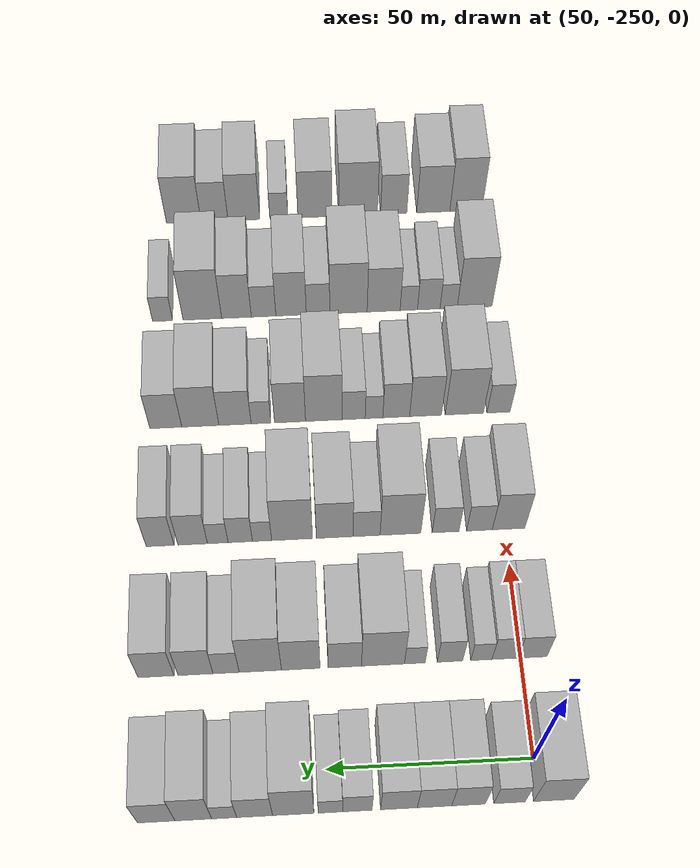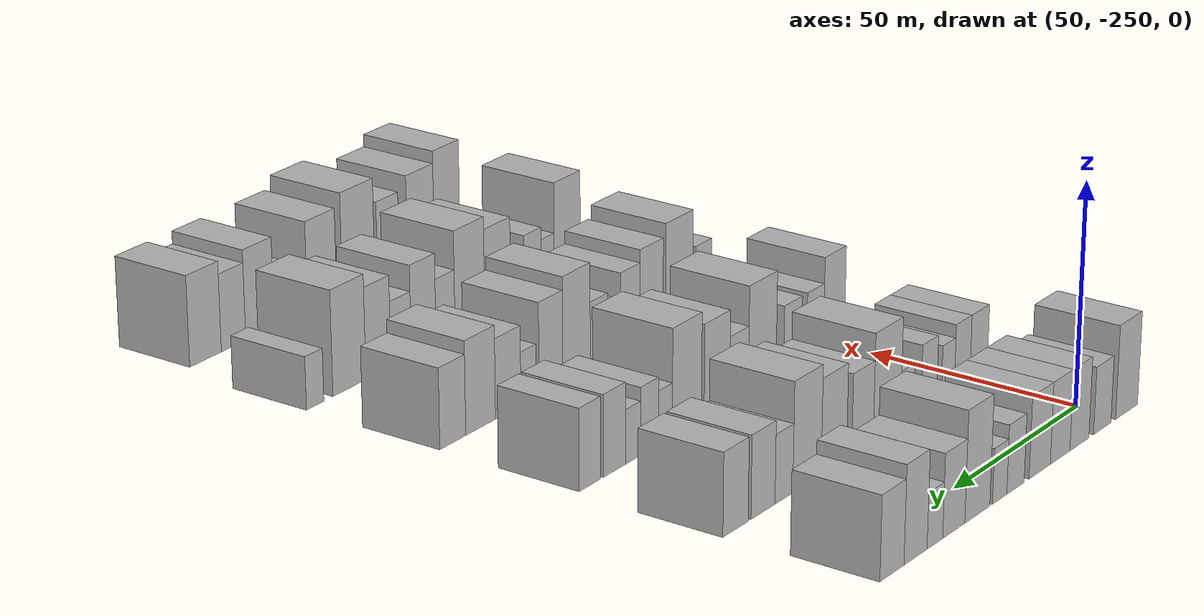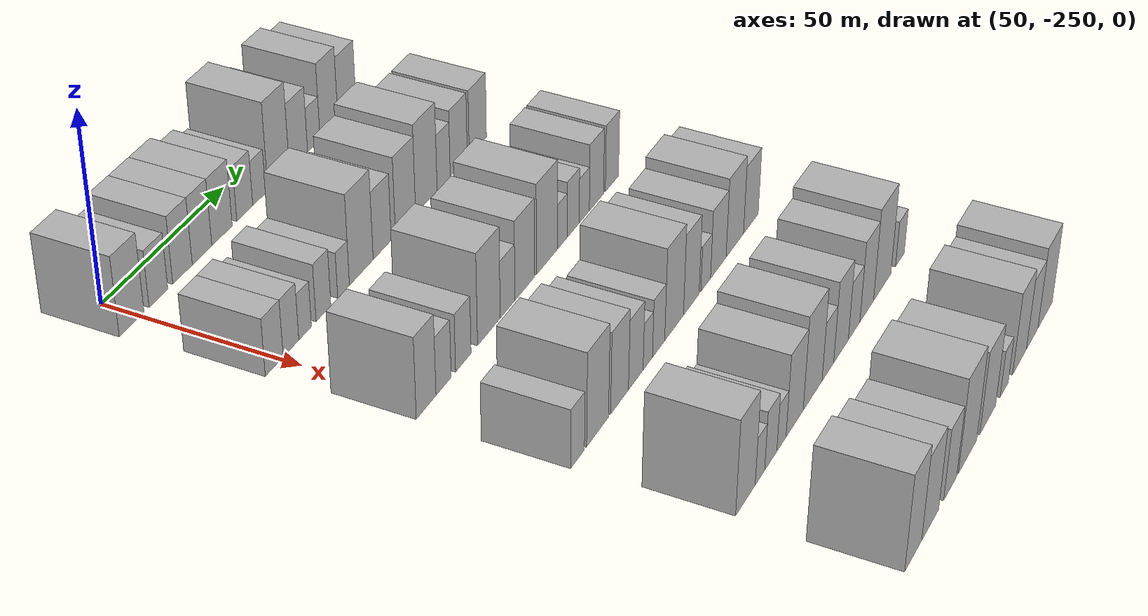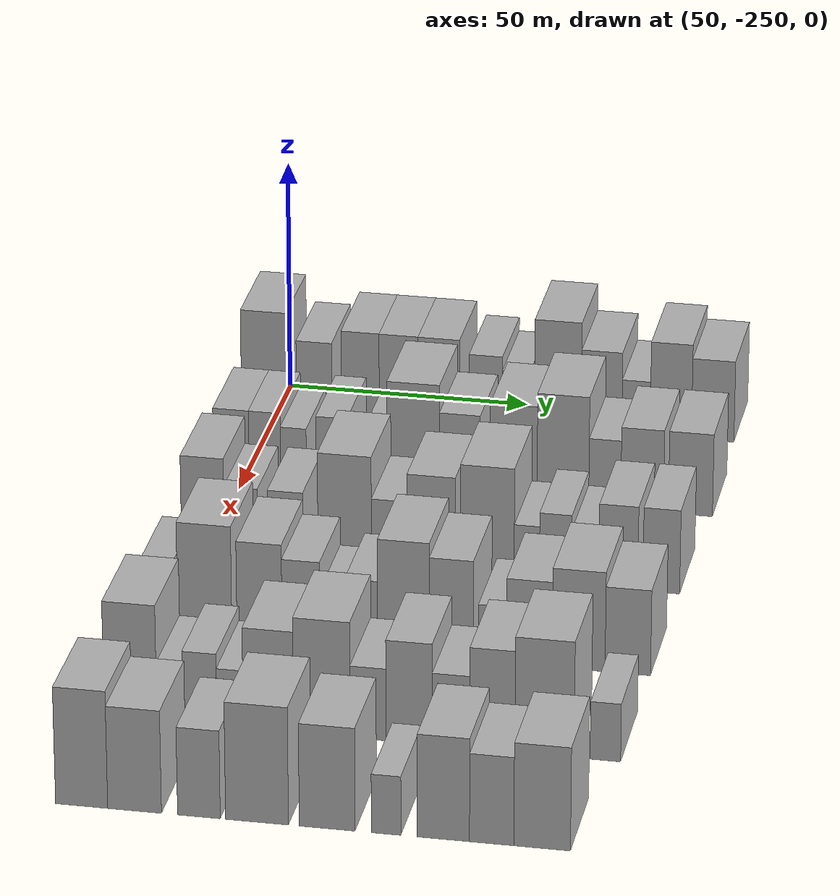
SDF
<sdf version="1.6">
 <world name="default">
  <model name="building_35">
   <static>1</static>
   <pose>50.0000 -253.4609 0 0.000000 0.000000 0.000000</pose>
   <link name="link">
    <pose>0 0 10.50 0 0 0</pose>
    <collision name="collision"><geometry><box><size>20.0000 9.6038 21.0000</size></box></geometry></collision>
    <visual name="visual">
     <cast_shadows>0</cast_shadows>
     <geometry><box><size>20.0000 9.6038 21.0000</size></box></geometry>
     <material>
      <script>
       <uri>model://HANNAS_wall/materials/scripts</uri>
       <uri>model://HANNAS_wall/materials/textures</uri>
       <name>vrc/HANNAS_wall</name>
      </script>
     </material>
    </visual>
   </link>
  </model>
  <model name="building_36">
   <static>1</static>
   <pose>50.0000 -242.9369 0 0.000000 0.000000 0.000000</pose>
   <link name="link">
    <pose>0 0 7.50 0 0 0</pose>
    <collision name="collision"><geometry><box><size>20.0000 7.4442 15.0000</size></box></geometry></collision>
    <visual name="visual">
     <cast_shadows>0</cast_shadows>
     <geometry><box><size>20.0000 7.4442 15.0000</size></box></geometry>
     <material>
      <script>
       <uri>model://HANNAS_wall/materials/scripts</uri>
       <uri>model://HANNAS_wall/materials/textures</uri>
       <name>vrc/HANNAS_wall</name>
      </script>
     </material>
    </visual>
   </link>
  </model>
  <model name="building_37">
   <static>1</static>
   <pose>50.0000 -233.2321 0 0.000000 0.000000 0.000000</pose>
   <link name="link">
    <pose>0 0 9.00 0 0 0</pose>
    <collision name="collision"><geometry><box><size>20.0000 7.9655 18.0000</size></box></geometry></collision>
    <visual name="visual">
     <cast_shadows>0</cast_shadows>
     <geometry><box><size>20.0000 7.9655 18.0000</size></box></geometry>
     <material>
      <script>
       <uri>model://HANNAS_wall/materials/scripts</uri>
       <uri>model://HANNAS_wall/materials/textures</uri>
       <name>vrc/HANNAS_wall</name>
      </script>
     </material>
    </visual>
   </link>
  </model>
  <model name="building_38">
   <static>1</static>
   <pose>50.0000 -225.1872 0 0.000000 0.000000 0.000000</pose>
   <link name="link">
    <pose>0 0 9.00 0 0 0</pose>
    <collision name="collision"><geometry><box><size>20.0000 8.1243 18.0000</size></box></geometry></collision>
    <visual name="visual">
     <cast_shadows>0</cast_shadows>
     <geometry><box><size>20.0000 8.1243 18.0000</size></box></geometry>
     <material>
      <script>
       <uri>model://HANNAS_wall/materials/scripts</uri>
       <uri>model://HANNAS_wall/materials/textures</uri>
       <name>vrc/HANNAS_wall</name>
      </script>
     </material>
    </visual>
   </link>
  </model>
  <model name="building_39">
   <static>1</static>
   <pose>50.0000 -216.7976 0 0.000000 0.000000 0.000000</pose>
   <link name="link">
    <pose>0 0 9.00 0 0 0</pose>
    <collision name="collision"><geometry><box><size>20.0000 8.6549 18.0000</size></box></geometry></collision>
    <visual name="visual">
     <cast_shadows>0</cast_shadows>
     <geometry><box><size>20.0000 8.6549 18.0000</size></box></geometry>
     <material>
      <script>
       <uri>model://HANNAS_wall/materials/scripts</uri>
       <uri>model://HANNAS_wall/materials/textures</uri>
       <name>vrc/HANNAS_wall</name>
      </script>
     </material>
    </visual>
   </link>
  </model>
  <model name="building_40">
   <static>1</static>
   <pose>50.0000 -206.9964 0 0.000000 0.000000 0.000000</pose>
   <link name="link">
    <pose>0 0 7.50 0 0 0</pose>
    <collision name="collision"><geometry><box><size>20.0000 6.9475 15.0000</size></box></geometry></collision>
    <visual name="visual">
     <cast_shadows>0</cast_shadows>
     <geometry><box><size>20.0000 6.9475 15.0000</size></box></geometry>
     <material>
      <script>
       <uri>model://HANNAS_wall/materials/scripts</uri>
       <uri>model://HANNAS_wall/materials/textures</uri>
       <name>vrc/HANNAS_wall</name>
      </script>
     </material>
    </visual>
   </link>
  </model>
  <model name="building_41">
   <static>1</static>
   <pose>50.0000 -200.6761 0 0.000000 0.000000 0.000000</pose>
   <link name="link">
    <pose>0 0 6.00 0 0 0</pose>
    <collision name="collision"><geometry><box><size>20.0000 5.6931 12.0000</size></box></geometry></collision>
    <visual name="visual">
     <cast_shadows>0</cast_shadows>
     <geometry><box><size>20.0000 5.6931 12.0000</size></box></geometry>
     <material>
      <script>
       <uri>model://HANNAS_wall/materials/scripts</uri>
       <uri>model://HANNAS_wall/materials/textures</uri>
       <name>vrc/HANNAS_wall</name>
      </script>
     </material>
    </visual>
   </link>
  </model>
  <model name="building_42">
   <static>1</static>
   <pose>50.0000 -191.9709 0 0.000000 0.000000 0.000000</pose>
   <link name="link">
    <pose>0 0 12.00 0 0 0</pose>
    <collision name="collision"><geometry><box><size>20.0000 9.7174 24.0000</size></box></geometry></collision>
    <visual name="visual">
     <cast_shadows>0</cast_shadows>
     <geometry><box><size>20.0000 9.7174 24.0000</size></box></geometry>
     <material>
      <script>
       <uri>model://HANNAS_wall/materials/scripts</uri>
       <uri>model://HANNAS_wall/materials/textures</uri>
       <name>vrc/HANNAS_wall</name>
      </script>
     </material>
    </visual>
   </link>
  </model>
  <model name="building_43">
   <static>1</static>
   <pose>50.0000 -182.9025 0 0.000000 0.000000 0.000000</pose>
   <link name="link">
    <pose>0 0 9.00 0 0 0</pose>
    <collision name="collision"><geometry><box><size>20.0000 8.4193 18.0000</size></box></geometry></collision>
    <visual name="visual">
     <cast_shadows>0</cast_shadows>
     <geometry><box><size>20.0000 8.4193 18.0000</size></box></geometry>
     <material>
      <script>
       <uri>model://HANNAS_wall/materials/scripts</uri>
       <uri>model://HANNAS_wall/materials/textures</uri>
       <name>vrc/HANNAS_wall</name>
      </script>
     </material>
    </visual>
   </link>
  </model>
  <model name="building_44">
   <static>1</static>
   <pose>50.0000 -175.7633 0 0.000000 0.000000 0.000000</pose>
   <link name="link">
    <pose>0 0 6.00 0 0 0</pose>
    <collision name="collision"><geometry><box><size>20.0000 5.8592 12.0000</size></box></geometry></collision>
    <visual name="visual">
     <cast_shadows>0</cast_shadows>
     <geometry><box><size>20.0000 5.8592 12.0000</size></box></geometry>
     <material>
      <script>
       <uri>model://HANNAS_wall/materials/scripts</uri>
       <uri>model://HANNAS_wall/materials/textures</uri>
       <name>vrc/HANNAS_wall</name>
      </script>
     </material>
    </visual>
   </link>
  </model>
  <model name="building_45">
   <static>1</static>
   <pose>50.0000 -168.5602 0 0.000000 0.000000 0.000000</pose>
   <link name="link">
    <pose>0 0 10.50 0 0 0</pose>
    <collision name="collision"><geometry><box><size>20.0000 8.5470 21.0000</size></box></geometry></collision>
    <visual name="visual">
     <cast_shadows>0</cast_shadows>
     <geometry><box><size>20.0000 8.5470 21.0000</size></box></geometry>
     <material>
      <script>
       <uri>model://HANNAS_wall/materials/scripts</uri>
       <uri>model://HANNAS_wall/materials/textures</uri>
       <name>vrc/HANNAS_wall</name>
      </script>
     </material>
    </visual>
   </link>
  </model>
  <model name="building_46">
   <static>1</static>
   <pose>50.0000 -159.9026 0 0.000000 0.000000 0.000000</pose>
   <link name="link">
    <pose>0 0 9.00 0 0 0</pose>
    <collision name="collision"><geometry><box><size>20.0000 8.7682 18.0000</size></box></geometry></collision>
    <visual name="visual">
     <cast_shadows>0</cast_shadows>
     <geometry><box><size>20.0000 8.7682 18.0000</size></box></geometry>
     <material>
      <script>
       <uri>model://HANNAS_wall/materials/scripts</uri>
       <uri>model://HANNAS_wall/materials/textures</uri>
       <name>vrc/HANNAS_wall</name>
      </script>
     </material>
    </visual>
   </link>
  </model>
  <model name="building_168">
   <static>1</static>
   <pose>85.0000 -252.7920 0 0.000000 0.000000 0.000000</pose>
   <link name="link">
    <pose>0 0 7.50 0 0 0</pose>
    <collision name="collision"><geometry><box><size>20.0000 7.3080 15.0000</size></box></geometry></collision>
    <visual name="visual">
     <cast_shadows>0</cast_shadows>
     <geometry><box><size>20.0000 7.3080 15.0000</size></box></geometry>
     <material>
      <script>
       <uri>model://HANNAS_wall/materials/scripts</uri>
       <uri>model://HANNAS_wall/materials/textures</uri>
       <name>vrc/HANNAS_wall</name>
      </script>
     </material>
    </visual>
   </link>
  </model>
  <model name="building_169">
   <static>1</static>
   <pose>85.0000 -245.8856 0 0.000000 0.000000 0.000000</pose>
   <link name="link">
    <pose>0 0 7.50 0 0 0</pose>
    <collision name="collision"><geometry><box><size>20.0000 6.5049 15.0000</size></box></geometry></collision>
    <visual name="visual">
     <cast_shadows>0</cast_shadows>
     <geometry><box><size>20.0000 6.5049 15.0000</size></box></geometry>
     <material>
      <script>
       <uri>model://HANNAS_wall/materials/scripts</uri>
       <uri>model://HANNAS_wall/materials/textures</uri>
       <name>vrc/HANNAS_wall</name>
      </script>
     </material>
    </visual>
   </link>
  </model>
  <model name="building_170">
   <static>1</static>
   <pose>85.0000 -239.9825 0 0.000000 0.000000 0.000000</pose>
   <link name="link">
    <pose>0 0 6.00 0 0 0</pose>
    <collision name="collision"><geometry><box><size>20.0000 5.3013 12.0000</size></box></geometry></collision>
    <visual name="visual">
     <cast_shadows>0</cast_shadows>
     <geometry><box><size>20.0000 5.3013 12.0000</size></box></geometry>
     <material>
      <script>
       <uri>model://HANNAS_wall/materials/scripts</uri>
       <uri>model://HANNAS_wall/materials/textures</uri>
       <name>vrc/HANNAS_wall</name>
      </script>
     </material>
    </visual>
   </link>
  </model>
  <model name="building_171">
   <static>1</static>
   <pose>85.0000 -232.1460 0 0.000000 0.000000 0.000000</pose>
   <link name="link">
    <pose>0 0 7.50 0 0 0</pose>
    <collision name="collision"><geometry><box><size>20.0000 6.3717 15.0000</size></box></geometry></collision>
    <visual name="visual">
     <cast_shadows>0</cast_shadows>
     <geometry><box><size>20.0000 6.3717 15.0000</size></box></geometry>
     <material>
      <script>
       <uri>model://HANNAS_wall/materials/scripts</uri>
       <uri>model://HANNAS_wall/materials/textures</uri>
       <name>vrc/HANNAS_wall</name>
      </script>
     </material>
    </visual>
   </link>
  </model>
  <model name="building_172">
   <static>1</static>
   <pose>85.0000 -223.3813 0 0.000000 0.000000 0.000000</pose>
   <link name="link">
    <pose>0 0 6.00 0 0 0</pose>
    <collision name="collision"><geometry><box><size>20.0000 5.1577 12.0000</size></box></geometry></collision>
    <visual name="visual">
     <cast_shadows>0</cast_shadows>
     <geometry><box><size>20.0000 5.1577 12.0000</size></box></geometry>
     <material>
      <script>
       <uri>model://HANNAS_wall/materials/scripts</uri>
       <uri>model://HANNAS_wall/materials/textures</uri>
       <name>vrc/HANNAS_wall</name>
      </script>
     </material>
    </visual>
   </link>
  </model>
  <model name="building_173">
   <static>1</static>
   <pose>85.0000 -215.4524 0 0.000000 0.000000 0.000000</pose>
   <link name="link">
    <pose>0 0 12.00 0 0 0</pose>
    <collision name="collision"><geometry><box><size>20.0000 10.7002 24.0000</size></box></geometry></collision>
    <visual name="visual">
     <cast_shadows>0</cast_shadows>
     <geometry><box><size>20.0000 10.7002 24.0000</size></box></geometry>
     <material>
      <script>
       <uri>model://HANNAS_wall/materials/scripts</uri>
       <uri>model://HANNAS_wall/materials/textures</uri>
       <name>vrc/HANNAS_wall</name>
      </script>
     </material>
    </visual>
   </link>
  </model>
  <model name="building_174">
   <static>1</static>
   <pose>85.0000 -205.9591 0 0.000000 0.000000 0.000000</pose>
   <link name="link">
    <pose>0 0 9.00 0 0 0</pose>
    <collision name="collision"><geometry><box><size>20.0000 8.2865 18.0000</size></box></geometry></collision>
    <visual name="visual">
     <cast_shadows>0</cast_shadows>
     <geometry><box><size>20.0000 8.2865 18.0000</size></box></geometry>
     <material>
      <script>
       <uri>model://HANNAS_wall/materials/scripts</uri>
       <uri>model://HANNAS_wall/materials/textures</uri>
       <name>vrc/HANNAS_wall</name>
      </script>
     </material>
    </visual>
   </link>
  </model>
  <model name="building_175">
   <static>1</static>
   <pose>85.0000 -195.0349 0 0.000000 0.000000 0.000000</pose>
   <link name="link">
    <pose>0 0 10.50 0 0 0</pose>
    <collision name="collision"><geometry><box><size>20.0000 9.5619 21.0000</size></box></geometry></collision>
    <visual name="visual">
     <cast_shadows>0</cast_shadows>
     <geometry><box><size>20.0000 9.5619 21.0000</size></box></geometry>
     <material>
      <script>
       <uri>model://HANNAS_wall/materials/scripts</uri>
       <uri>model://HANNAS_wall/materials/textures</uri>
       <name>vrc/HANNAS_wall</name>
      </script>
     </material>
    </visual>
   </link>
  </model>
  <model name="building_176">
   <static>1</static>
   <pose>85.0000 -185.0177 0 0.000000 0.000000 0.000000</pose>
   <link name="link">
    <pose>0 0 12.00 0 0 0</pose>
    <collision name="collision"><geometry><box><size>20.0000 10.4725 24.0000</size></box></geometry></collision>
    <visual name="visual">
     <cast_shadows>0</cast_shadows>
     <geometry><box><size>20.0000 10.4725 24.0000</size></box></geometry>
     <material>
      <script>
       <uri>model://HANNAS_wall/materials/scripts</uri>
       <uri>model://HANNAS_wall/materials/textures</uri>
       <name>vrc/HANNAS_wall</name>
      </script>
     </material>
    </visual>
   </link>
  </model>
  <model name="building_177">
   <static>1</static>
   <pose>85.0000 -176.5375 0 0.000000 0.000000 0.000000</pose>
   <link name="link">
    <pose>0 0 7.50 0 0 0</pose>
    <collision name="collision"><geometry><box><size>20.0000 6.4879 15.0000</size></box></geometry></collision>
    <visual name="visual">
     <cast_shadows>0</cast_shadows>
     <geometry><box><size>20.0000 6.4879 15.0000</size></box></geometry>
     <material>
      <script>
       <uri>model://HANNAS_wall/materials/scripts</uri>
       <uri>model://HANNAS_wall/materials/textures</uri>
       <name>vrc/HANNAS_wall</name>
      </script>
     </material>
    </visual>
   </link>
  </model>
  <model name="building_178">
   <static>1</static>
   <pose>85.0000 -168.9844 0 0.000000 0.000000 0.000000</pose>
   <link name="link">
    <pose>0 0 9.00 0 0 0</pose>
    <collision name="collision"><geometry><box><size>20.0000 8.6184 18.0000</size></box></geometry></collision>
    <visual name="visual">
     <cast_shadows>0</cast_shadows>
     <geometry><box><size>20.0000 8.6184 18.0000</size></box></geometry>
     <material>
      <script>
       <uri>model://HANNAS_wall/materials/scripts</uri>
       <uri>model://HANNAS_wall/materials/textures</uri>
       <name>vrc/HANNAS_wall</name>
      </script>
     </material>
    </visual>
   </link>
  </model>
  <model name="building_179">
   <static>1</static>
   <pose>85.0000 -159.2339 0 0.000000 0.000000 0.000000</pose>
   <link name="link">
    <pose>0 0 9.00 0 0 0</pose>
    <collision name="collision"><geometry><box><size>20.0000 8.8824 18.0000</size></box></geometry></collision>
    <visual name="visual">
     <cast_shadows>0</cast_shadows>
     <geometry><box><size>20.0000 8.8824 18.0000</size></box></geometry>
     <material>
      <script>
       <uri>model://HANNAS_wall/materials/scripts</uri>
       <uri>model://HANNAS_wall/materials/textures</uri>
       <name>vrc/HANNAS_wall</name>
      </script>
     </material>
    </visual>
   </link>
  </model>
  <model name="building_301">
   <static>1</static>
   <pose>120.0000 -250.8815 0 0.000000 0.000000 0.000000</pose>
   <link name="link">
    <pose>0 0 10.50 0 0 0</pose>
    <collision name="collision"><geometry><box><size>20.0000 8.5835 21.0000</size></box></geometry></collision>
    <visual name="visual">
     <cast_shadows>0</cast_shadows>
     <geometry><box><size>20.0000 8.5835 21.0000</size></box></geometry>
     <material>
      <script>
       <uri>model://HANNAS_wall/materials/scripts</uri>
       <uri>model://HANNAS_wall/materials/textures</uri>
       <name>vrc/HANNAS_wall</name>
      </script>
     </material>
    </visual>
   </link>
  </model>
  <model name="building_302">
   <static>1</static>
   <pose>120.0000 -243.2080 0 0.000000 0.000000 0.000000</pose>
   <link name="link">
    <pose>0 0 7.50 0 0 0</pose>
    <collision name="collision"><geometry><box><size>20.0000 6.7633 15.0000</size></box></geometry></collision>
    <visual name="visual">
     <cast_shadows>0</cast_shadows>
     <geometry><box><size>20.0000 6.7633 15.0000</size></box></geometry>
     <material>
      <script>
       <uri>model://HANNAS_wall/materials/scripts</uri>
       <uri>model://HANNAS_wall/materials/textures</uri>
       <name>vrc/HANNAS_wall</name>
      </script>
     </material>
    </visual>
   </link>
  </model>
  <model name="building_303">
   <static>1</static>
   <pose>120.0000 -234.2974 0 0.000000 0.000000 0.000000</pose>
   <link name="link">
    <pose>0 0 7.50 0 0 0</pose>
    <collision name="collision"><geometry><box><size>20.0000 7.0579 15.0000</size></box></geometry></collision>
    <visual name="visual">
     <cast_shadows>0</cast_shadows>
     <geometry><box><size>20.0000 7.0579 15.0000</size></box></geometry>
     <material>
      <script>
       <uri>model://HANNAS_wall/materials/scripts</uri>
       <uri>model://HANNAS_wall/materials/textures</uri>
       <name>vrc/HANNAS_wall</name>
      </script>
     </material>
    </visual>
   </link>
  </model>
  <model name="building_304">
   <static>1</static>
   <pose>120.0000 -222.4305 0 0.000000 0.000000 0.000000</pose>
   <link name="link">
    <pose>0 0 12.00 0 0 0</pose>
    <collision name="collision"><geometry><box><size>20.0000 10.6759 24.0000</size></box></geometry></collision>
    <visual name="visual">
     <cast_shadows>0</cast_shadows>
     <geometry><box><size>20.0000 10.6759 24.0000</size></box></geometry>
     <material>
      <script>
       <uri>model://HANNAS_wall/materials/scripts</uri>
       <uri>model://HANNAS_wall/materials/textures</uri>
       <name>vrc/HANNAS_wall</name>
      </script>
     </material>
    </visual>
   </link>
  </model>
  <model name="building_305">
   <static>1</static>
   <pose>120.0000 -213.5513 0 0.000000 0.000000 0.000000</pose>
   <link name="link">
    <pose>0 0 7.50 0 0 0</pose>
    <collision name="collision"><geometry><box><size>20.0000 7.0824 15.0000</size></box></geometry></collision>
    <visual name="visual">
     <cast_shadows>0</cast_shadows>
     <geometry><box><size>20.0000 7.0824 15.0000</size></box></geometry>
     <material>
      <script>
       <uri>model://HANNAS_wall/materials/scripts</uri>
       <uri>model://HANNAS_wall/materials/textures</uri>
       <name>vrc/HANNAS_wall</name>
      </script>
     </material>
    </visual>
   </link>
  </model>
  <model name="building_306">
   <static>1</static>
   <pose>120.0000 -205.2124 0 0.000000 0.000000 0.000000</pose>
   <link name="link">
    <pose>0 0 10.50 0 0 0</pose>
    <collision name="collision"><geometry><box><size>20.0000 9.5956 21.0000</size></box></geometry></collision>
    <visual name="visual">
     <cast_shadows>0</cast_shadows>
     <geometry><box><size>20.0000 9.5956 21.0000</size></box></geometry>
     <material>
      <script>
       <uri>model://HANNAS_wall/materials/scripts</uri>
       <uri>model://HANNAS_wall/materials/textures</uri>
       <name>vrc/HANNAS_wall</name>
      </script>
     </material>
    </visual>
   </link>
  </model>
  <model name="building_307">
   <static>1</static>
   <pose>120.0000 -194.0780 0 0.000000 0.000000 0.000000</pose>
   <link name="link">
    <pose>0 0 12.00 0 0 0</pose>
    <collision name="collision"><geometry><box><size>20.0000 10.6731 24.0000</size></box></geometry></collision>
    <visual name="visual">
     <cast_shadows>0</cast_shadows>
     <geometry><box><size>20.0000 10.6731 24.0000</size></box></geometry>
     <material>
      <script>
       <uri>model://HANNAS_wall/materials/scripts</uri>
       <uri>model://HANNAS_wall/materials/textures</uri>
       <name>vrc/HANNAS_wall</name>
      </script>
     </material>
    </visual>
   </link>
  </model>
  <model name="building_308">
   <static>1</static>
   <pose>120.0000 -186.2380 0 0.000000 0.000000 0.000000</pose>
   <link name="link">
    <pose>0 0 6.00 0 0 0</pose>
    <collision name="collision"><geometry><box><size>20.0000 5.0070 12.0000</size></box></geometry></collision>
    <visual name="visual">
     <cast_shadows>0</cast_shadows>
     <geometry><box><size>20.0000 5.0070 12.0000</size></box></geometry>
     <material>
      <script>
       <uri>model://HANNAS_wall/materials/scripts</uri>
       <uri>model://HANNAS_wall/materials/textures</uri>
       <name>vrc/HANNAS_wall</name>
      </script>
     </material>
    </visual>
   </link>
  </model>
  <model name="building_309">
   <static>1</static>
   <pose>120.0000 -180.5584 0 0.000000 0.000000 0.000000</pose>
   <link name="link">
    <pose>0 0 7.50 0 0 0</pose>
    <collision name="collision"><geometry><box><size>20.0000 6.3521 15.0000</size></box></geometry></collision>
    <visual name="visual">
     <cast_shadows>0</cast_shadows>
     <geometry><box><size>20.0000 6.3521 15.0000</size></box></geometry>
     <material>
      <script>
       <uri>model://HANNAS_wall/materials/scripts</uri>
       <uri>model://HANNAS_wall/materials/textures</uri>
       <name>vrc/HANNAS_wall</name>
      </script>
     </material>
    </visual>
   </link>
  </model>
  <model name="building_310">
   <static>1</static>
   <pose>120.0000 -174.7001 0 0.000000 0.000000 0.000000</pose>
   <link name="link">
    <pose>0 0 6.00 0 0 0</pose>
    <collision name="collision"><geometry><box><size>20.0000 5.3645 12.0000</size></box></geometry></collision>
    <visual name="visual">
     <cast_shadows>0</cast_shadows>
     <geometry><box><size>20.0000 5.3645 12.0000</size></box></geometry>
     <material>
      <script>
       <uri>model://HANNAS_wall/materials/scripts</uri>
       <uri>model://HANNAS_wall/materials/textures</uri>
       <name>vrc/HANNAS_wall</name>
      </script>
     </material>
    </visual>
   </link>
  </model>
  <model name="building_311">
   <static>1</static>
   <pose>120.0000 -168.1695 0 0.000000 0.000000 0.000000</pose>
   <link name="link">
    <pose>0 0 9.00 0 0 0</pose>
    <collision name="collision"><geometry><box><size>20.0000 7.6967 18.0000</size></box></geometry></collision>
    <visual name="visual">
     <cast_shadows>0</cast_shadows>
     <geometry><box><size>20.0000 7.6967 18.0000</size></box></geometry>
     <material>
      <script>
       <uri>model://HANNAS_wall/materials/scripts</uri>
       <uri>model://HANNAS_wall/materials/textures</uri>
       <name>vrc/HANNAS_wall</name>
      </script>
     </material>
    </visual>
   </link>
  </model>
  <model name="building_312">
   <static>1</static>
   <pose>120.0000 -159.6994 0 0.000000 0.000000 0.000000</pose>
   <link name="link">
    <pose>0 0 9.00 0 0 0</pose>
    <collision name="collision"><geometry><box><size>20.0000 7.2435 18.0000</size></box></geometry></collision>
    <visual name="visual">
     <cast_shadows>0</cast_shadows>
     <geometry><box><size>20.0000 7.2435 18.0000</size></box></geometry>
     <material>
      <script>
       <uri>model://HANNAS_wall/materials/scripts</uri>
       <uri>model://HANNAS_wall/materials/textures</uri>
       <name>vrc/HANNAS_wall</name>
      </script>
     </material>
    </visual>
   </link>
  </model>
  <model name="building_428">
   <static>1</static>
   <pose>155.0000 -252.2137 0 0.000000 0.000000 0.000000</pose>
   <link name="link">
    <pose>0 0 7.50 0 0 0</pose>
    <collision name="collision"><geometry><box><size>20.0000 6.3972 15.0000</size></box></geometry></collision>
    <visual name="visual">
     <cast_shadows>0</cast_shadows>
     <geometry><box><size>20.0000 6.3972 15.0000</size></box></geometry>
     <material>
      <script>
       <uri>model://HANNAS_wall/materials/scripts</uri>
       <uri>model://HANNAS_wall/materials/textures</uri>
       <name>vrc/HANNAS_wall</name>
      </script>
     </material>
    </visual>
   </link>
  </model>
  <model name="building_429">
   <static>1</static>
   <pose>155.0000 -242.7212 0 0.000000 0.000000 0.000000</pose>
   <link name="link">
    <pose>0 0 12.00 0 0 0</pose>
    <collision name="collision"><geometry><box><size>20.0000 10.5878 24.0000</size></box></geometry></collision>
    <visual name="visual">
     <cast_shadows>0</cast_shadows>
     <geometry><box><size>20.0000 10.5878 24.0000</size></box></geometry>
     <material>
      <script>
       <uri>model://HANNAS_wall/materials/scripts</uri>
       <uri>model://HANNAS_wall/materials/textures</uri>
       <name>vrc/HANNAS_wall</name>
      </script>
     </material>
    </visual>
   </link>
  </model>
  <model name="building_430">
   <static>1</static>
   <pose>155.0000 -232.0194 0 0.000000 0.000000 0.000000</pose>
   <link name="link">
    <pose>0 0 10.50 0 0 0</pose>
    <collision name="collision"><geometry><box><size>20.0000 8.8157 21.0000</size></box></geometry></collision>
    <visual name="visual">
     <cast_shadows>0</cast_shadows>
     <geometry><box><size>20.0000 8.8157 21.0000</size></box></geometry>
     <material>
      <script>
       <uri>model://HANNAS_wall/materials/scripts</uri>
       <uri>model://HANNAS_wall/materials/textures</uri>
       <name>vrc/HANNAS_wall</name>
      </script>
     </material>
    </visual>
   </link>
  </model>
  <model name="building_431">
   <static>1</static>
   <pose>155.0000 -223.9180 0 0.000000 0.000000 0.000000</pose>
   <link name="link">
    <pose>0 0 9.00 0 0 0</pose>
    <collision name="collision"><geometry><box><size>20.0000 7.3872 18.0000</size></box></geometry></collision>
    <visual name="visual">
     <cast_shadows>0</cast_shadows>
     <geometry><box><size>20.0000 7.3872 18.0000</size></box></geometry>
     <material>
      <script>
       <uri>model://HANNAS_wall/materials/scripts</uri>
       <uri>model://HANNAS_wall/materials/textures</uri>
       <name>vrc/HANNAS_wall</name>
      </script>
     </material>
    </visual>
   </link>
  </model>
  <model name="building_432">
   <static>1</static>
   <pose>155.0000 -217.8028 0 0.000000 0.000000 0.000000</pose>
   <link name="link">
    <pose>0 0 6.00 0 0 0</pose>
    <collision name="collision"><geometry><box><size>20.0000 4.8433 12.0000</size></box></geometry></collision>
    <visual name="visual">
     <cast_shadows>0</cast_shadows>
     <geometry><box><size>20.0000 4.8433 12.0000</size></box></geometry>
     <material>
      <script>
       <uri>model://HANNAS_wall/materials/scripts</uri>
       <uri>model://HANNAS_wall/materials/textures</uri>
       <name>vrc/HANNAS_wall</name>
      </script>
     </material>
    </visual>
   </link>
  </model>
  <model name="building_433">
   <static>1</static>
   <pose>155.0000 -212.1870 0 0.000000 0.000000 0.000000</pose>
   <link name="link">
    <pose>0 0 7.50 0 0 0</pose>
    <collision name="collision"><geometry><box><size>20.0000 6.3884 15.0000</size></box></geometry></collision>
    <visual name="visual">
     <cast_shadows>0</cast_shadows>
     <geometry><box><size>20.0000 6.3884 15.0000</size></box></geometry>
     <material>
      <script>
       <uri>model://HANNAS_wall/materials/scripts</uri>
       <uri>model://HANNAS_wall/materials/textures</uri>
       <name>vrc/HANNAS_wall</name>
      </script>
     </material>
    </visual>
   </link>
  </model>
  <model name="building_434">
   <static>1</static>
   <pose>155.0000 -203.9880 0 0.000000 0.000000 0.000000</pose>
   <link name="link">
    <pose>0 0 12.00 0 0 0</pose>
    <collision name="collision"><geometry><box><size>20.0000 10.0095 24.0000</size></box></geometry></collision>
    <visual name="visual">
     <cast_shadows>0</cast_shadows>
     <geometry><box><size>20.0000 10.0095 24.0000</size></box></geometry>
     <material>
      <script>
       <uri>model://HANNAS_wall/materials/scripts</uri>
       <uri>model://HANNAS_wall/materials/textures</uri>
       <name>vrc/HANNAS_wall</name>
      </script>
     </material>
    </visual>
   </link>
  </model>
  <model name="building_435">
   <static>1</static>
   <pose>155.0000 -194.7295 0 0.000000 0.000000 0.000000</pose>
   <link name="link">
    <pose>0 0 10.50 0 0 0</pose>
    <collision name="collision"><geometry><box><size>20.0000 8.5076 21.0000</size></box></geometry></collision>
    <visual name="visual">
     <cast_shadows>0</cast_shadows>
     <geometry><box><size>20.0000 8.5076 21.0000</size></box></geometry>
     <material>
      <script>
       <uri>model://HANNAS_wall/materials/scripts</uri>
       <uri>model://HANNAS_wall/materials/textures</uri>
       <name>vrc/HANNAS_wall</name>
      </script>
     </material>
    </visual>
   </link>
  </model>
  <model name="building_436">
   <static>1</static>
   <pose>155.0000 -186.7700 0 0.000000 0.000000 0.000000</pose>
   <link name="link">
    <pose>0 0 6.00 0 0 0</pose>
    <collision name="collision"><geometry><box><size>20.0000 5.4113 12.0000</size></box></geometry></collision>
    <visual name="visual">
     <cast_shadows>0</cast_shadows>
     <geometry><box><size>20.0000 5.4113 12.0000</size></box></geometry>
     <material>
      <script>
       <uri>model://HANNAS_wall/materials/scripts</uri>
       <uri>model://HANNAS_wall/materials/textures</uri>
       <name>vrc/HANNAS_wall</name>
      </script>
     </material>
    </visual>
   </link>
  </model>
  <model name="building_437">
   <static>1</static>
   <pose>155.0000 -179.6415 0 0.000000 0.000000 0.000000</pose>
   <link name="link">
    <pose>0 0 9.00 0 0 0</pose>
    <collision name="collision"><geometry><box><size>20.0000 8.8458 18.0000</size></box></geometry></collision>
    <visual name="visual">
     <cast_shadows>0</cast_shadows>
     <geometry><box><size>20.0000 8.8458 18.0000</size></box></geometry>
     <material>
      <script>
       <uri>model://HANNAS_wall/materials/scripts</uri>
       <uri>model://HANNAS_wall/materials/textures</uri>
       <name>vrc/HANNAS_wall</name>
      </script>
     </material>
    </visual>
   </link>
  </model>
  <model name="building_438">
   <static>1</static>
   <pose>155.0000 -170.1397 0 0.000000 0.000000 0.000000</pose>
   <link name="link">
    <pose>0 0 10.50 0 0 0</pose>
    <collision name="collision"><geometry><box><size>20.0000 10.1578 21.0000</size></box></geometry></collision>
    <visual name="visual">
     <cast_shadows>0</cast_shadows>
     <geometry><box><size>20.0000 10.1578 21.0000</size></box></geometry>
     <material>
      <script>
       <uri>model://HANNAS_wall/materials/scripts</uri>
       <uri>model://HANNAS_wall/materials/textures</uri>
       <name>vrc/HANNAS_wall</name>
      </script>
     </material>
    </visual>
   </link>
  </model>
  <model name="building_439">
   <static>1</static>
   <pose>155.0000 -160.6967 0 0.000000 0.000000 0.000000</pose>
   <link name="link">
    <pose>0 0 9.00 0 0 0</pose>
    <collision name="collision"><geometry><box><size>20.0000 8.7280 18.0000</size></box></geometry></collision>
    <visual name="visual">
     <cast_shadows>0</cast_shadows>
     <geometry><box><size>20.0000 8.7280 18.0000</size></box></geometry>
     <material>
      <script>
       <uri>model://HANNAS_wall/materials/scripts</uri>
       <uri>model://HANNAS_wall/materials/textures</uri>
       <name>vrc/HANNAS_wall</name>
      </script>
     </material>
    </visual>
   </link>
  </model>
  <model name="building_552">
   <static>1</static>
   <pose>190.0000 -249.2038 0 0.000000 0.000000 0.000000</pose>
   <link name="link">
    <pose>0 0 12.00 0 0 0</pose>
    <collision name="collision"><geometry><box><size>20.0000 10.0859 24.0000</size></box></geometry></collision>
    <visual name="visual">
     <cast_shadows>0</cast_shadows>
     <geometry><box><size>20.0000 10.0859 24.0000</size></box></geometry>
     <material>
      <script>
       <uri>model://HANNAS_wall/materials/scripts</uri>
       <uri>model://HANNAS_wall/materials/textures</uri>
       <name>vrc/HANNAS_wall</name>
      </script>
     </material>
    </visual>
   </link>
  </model>
  <model name="building_553">
   <static>1</static>
   <pose>190.0000 -241.6749 0 0.000000 0.000000 0.000000</pose>
   <link name="link">
    <pose>0 0 6.00 0 0 0</pose>
    <collision name="collision"><geometry><box><size>20.0000 4.9719 12.0000</size></box></geometry></collision>
    <visual name="visual">
     <cast_shadows>0</cast_shadows>
     <geometry><box><size>20.0000 4.9719 12.0000</size></box></geometry>
     <material>
      <script>
       <uri>model://HANNAS_wall/materials/scripts</uri>
       <uri>model://HANNAS_wall/materials/textures</uri>
       <name>vrc/HANNAS_wall</name>
      </script>
     </material>
    </visual>
   </link>
  </model>
  <model name="building_554">
   <static>1</static>
   <pose>190.0000 -235.9261 0 0.000000 0.000000 0.000000</pose>
   <link name="link">
    <pose>0 0 7.50 0 0 0</pose>
    <collision name="collision"><geometry><box><size>20.0000 6.5257 15.0000</size></box></geometry></collision>
    <visual name="visual">
     <cast_shadows>0</cast_shadows>
     <geometry><box><size>20.0000 6.5257 15.0000</size></box></geometry>
     <material>
      <script>
       <uri>model://HANNAS_wall/materials/scripts</uri>
       <uri>model://HANNAS_wall/materials/textures</uri>
       <name>vrc/HANNAS_wall</name>
      </script>
     </material>
    </visual>
   </link>
  </model>
  <model name="building_555">
   <static>1</static>
   <pose>190.0000 -230.1595 0 0.000000 0.000000 0.000000</pose>
   <link name="link">
    <pose>0 0 6.00 0 0 0</pose>
    <collision name="collision"><geometry><box><size>20.0000 5.0076 12.0000</size></box></geometry></collision>
    <visual name="visual">
     <cast_shadows>0</cast_shadows>
     <geometry><box><size>20.0000 5.0076 12.0000</size></box></geometry>
     <material>
      <script>
       <uri>model://HANNAS_wall/materials/scripts</uri>
       <uri>model://HANNAS_wall/materials/textures</uri>
       <name>vrc/HANNAS_wall</name>
      </script>
     </material>
    </visual>
   </link>
  </model>
  <model name="building_556">
   <static>1</static>
   <pose>190.0000 -222.8807 0 0.000000 0.000000 0.000000</pose>
   <link name="link">
    <pose>0 0 10.50 0 0 0</pose>
    <collision name="collision"><geometry><box><size>20.0000 9.5500 21.0000</size></box></geometry></collision>
    <visual name="visual">
     <cast_shadows>0</cast_shadows>
     <geometry><box><size>20.0000 9.5500 21.0000</size></box></geometry>
     <material>
      <script>
       <uri>model://HANNAS_wall/materials/scripts</uri>
       <uri>model://HANNAS_wall/materials/textures</uri>
       <name>vrc/HANNAS_wall</name>
      </script>
     </material>
    </visual>
   </link>
  </model>
  <model name="building_557">
   <static>1</static>
   <pose>190.0000 -212.7242 0 0.000000 0.000000 0.000000</pose>
   <link name="link">
    <pose>0 0 12.00 0 0 0</pose>
    <collision name="collision"><geometry><box><size>20.0000 10.7632 24.0000</size></box></geometry></collision>
    <visual name="visual">
     <cast_shadows>0</cast_shadows>
     <geometry><box><size>20.0000 10.7632 24.0000</size></box></geometry>
     <material>
      <script>
       <uri>model://HANNAS_wall/materials/scripts</uri>
       <uri>model://HANNAS_wall/materials/textures</uri>
       <name>vrc/HANNAS_wall</name>
      </script>
     </material>
    </visual>
   </link>
  </model>
  <model name="building_558">
   <static>1</static>
   <pose>190.0000 -203.9573 0 0.000000 0.000000 0.000000</pose>
   <link name="link">
    <pose>0 0 7.50 0 0 0</pose>
    <collision name="collision"><geometry><box><size>20.0000 6.7705 15.0000</size></box></geometry></collision>
    <visual name="visual">
     <cast_shadows>0</cast_shadows>
     <geometry><box><size>20.0000 6.7705 15.0000</size></box></geometry>
     <material>
      <script>
       <uri>model://HANNAS_wall/materials/scripts</uri>
       <uri>model://HANNAS_wall/materials/textures</uri>
       <name>vrc/HANNAS_wall</name>
      </script>
     </material>
    </visual>
   </link>
  </model>
  <model name="building_559">
   <static>1</static>
   <pose>190.0000 -196.1997 0 0.000000 0.000000 0.000000</pose>
   <link name="link">
    <pose>0 0 10.50 0 0 0</pose>
    <collision name="collision"><geometry><box><size>20.0000 8.7447 21.0000</size></box></geometry></collision>
    <visual name="visual">
     <cast_shadows>0</cast_shadows>
     <geometry><box><size>20.0000 8.7447 21.0000</size></box></geometry>
     <material>
      <script>
       <uri>model://HANNAS_wall/materials/scripts</uri>
       <uri>model://HANNAS_wall/materials/textures</uri>
       <name>vrc/HANNAS_wall</name>
      </script>
     </material>
    </visual>
   </link>
  </model>
  <model name="building_560">
   <static>1</static>
   <pose>190.0000 -188.2989 0 0.000000 0.000000 0.000000</pose>
   <link name="link">
    <pose>0 0 7.50 0 0 0</pose>
    <collision name="collision"><geometry><box><size>20.0000 7.0569 15.0000</size></box></geometry></collision>
    <visual name="visual">
     <cast_shadows>0</cast_shadows>
     <geometry><box><size>20.0000 7.0569 15.0000</size></box></geometry>
     <material>
      <script>
       <uri>model://HANNAS_wall/materials/scripts</uri>
       <uri>model://HANNAS_wall/materials/textures</uri>
       <name>vrc/HANNAS_wall</name>
      </script>
     </material>
    </visual>
   </link>
  </model>
  <model name="building_561">
   <static>1</static>
   <pose>190.0000 -180.5091 0 0.000000 0.000000 0.000000</pose>
   <link name="link">
    <pose>0 0 10.50 0 0 0</pose>
    <collision name="collision"><geometry><box><size>20.0000 8.5228 21.0000</size></box></geometry></collision>
    <visual name="visual">
     <cast_shadows>0</cast_shadows>
     <geometry><box><size>20.0000 8.5228 21.0000</size></box></geometry>
     <material>
      <script>
       <uri>model://HANNAS_wall/materials/scripts</uri>
       <uri>model://HANNAS_wall/materials/textures</uri>
       <name>vrc/HANNAS_wall</name>
      </script>
     </material>
    </visual>
   </link>
  </model>
  <model name="building_562">
   <static>1</static>
   <pose>190.0000 -170.7043 0 0.000000 0.000000 0.000000</pose>
   <link name="link">
    <pose>0 0 12.00 0 0 0</pose>
    <collision name="collision"><geometry><box><size>20.0000 11.0867 24.0000</size></box></geometry></collision>
    <visual name="visual">
     <cast_shadows>0</cast_shadows>
     <geometry><box><size>20.0000 11.0867 24.0000</size></box></geometry>
     <material>
      <script>
       <uri>model://HANNAS_wall/materials/scripts</uri>
       <uri>model://HANNAS_wall/materials/textures</uri>
       <name>vrc/HANNAS_wall</name>
      </script>
     </material>
    </visual>
   </link>
  </model>
  <model name="building_563">
   <static>1</static>
   <pose>190.0000 -159.3004 0 0.000000 0.000000 0.000000</pose>
   <link name="link">
    <pose>0 0 6.00 0 0 0</pose>
    <collision name="collision"><geometry><box><size>20.0000 5.7210 12.0000</size></box></geometry></collision>
    <visual name="visual">
     <cast_shadows>0</cast_shadows>
     <geometry><box><size>20.0000 5.7210 12.0000</size></box></geometry>
     <material>
      <script>
       <uri>model://HANNAS_wall/materials/scripts</uri>
       <uri>model://HANNAS_wall/materials/textures</uri>
       <name>vrc/HANNAS_wall</name>
      </script>
     </material>
    </visual>
   </link>
  </model>
  <model name="building_681">
   <static>1</static>
   <pose>225.0000 -250.2095 0 0.000000 0.000000 0.000000</pose>
   <link name="link">
    <pose>0 0 12.00 0 0 0</pose>
    <collision name="collision"><geometry><box><size>20.0000 9.7444 24.0000</size></box></geometry></collision>
    <visual name="visual">
     <cast_shadows>0</cast_shadows>
     <geometry><box><size>20.0000 9.7444 24.0000</size></box></geometry>
     <material>
      <script>
       <uri>model://HANNAS_wall/materials/scripts</uri>
       <uri>model://HANNAS_wall/materials/textures</uri>
       <name>vrc/HANNAS_wall</name>
      </script>
     </material>
    </visual>
   </link>
  </model>
  <model name="building_682">
   <static>1</static>
   <pose>225.0000 -240.3216 0 0.000000 0.000000 0.000000</pose>
   <link name="link">
    <pose>0 0 10.50 0 0 0</pose>
    <collision name="collision"><geometry><box><size>20.0000 10.0315 21.0000</size></box></geometry></collision>
    <visual name="visual">
     <cast_shadows>0</cast_shadows>
     <geometry><box><size>20.0000 10.0315 21.0000</size></box></geometry>
     <material>
      <script>
       <uri>model://HANNAS_wall/materials/scripts</uri>
       <uri>model://HANNAS_wall/materials/textures</uri>
       <name>vrc/HANNAS_wall</name>
      </script>
     </material>
    </visual>
   </link>
  </model>
  <model name="building_683">
   <static>1</static>
   <pose>225.0000 -228.3398 0 0.000000 0.000000 0.000000</pose>
   <link name="link">
    <pose>0 0 9.00 0 0 0</pose>
    <collision name="collision"><geometry><box><size>20.0000 7.9321 18.0000</size></box></geometry></collision>
    <visual name="visual">
     <cast_shadows>0</cast_shadows>
     <geometry><box><size>20.0000 7.9321 18.0000</size></box></geometry>
     <material>
      <script>
       <uri>model://HANNAS_wall/materials/scripts</uri>
       <uri>model://HANNAS_wall/materials/textures</uri>
       <name>vrc/HANNAS_wall</name>
      </script>
     </material>
    </visual>
   </link>
  </model>
  <model name="building_684">
   <static>1</static>
   <pose>225.0000 -217.5532 0 0.000000 0.000000 0.000000</pose>
   <link name="link">
    <pose>0 0 12.00 0 0 0</pose>
    <collision name="collision"><geometry><box><size>20.0000 11.6411 24.0000</size></box></geometry></collision>
    <visual name="visual">
     <cast_shadows>0</cast_shadows>
     <geometry><box><size>20.0000 11.6411 24.0000</size></box></geometry>
     <material>
      <script>
       <uri>model://HANNAS_wall/materials/scripts</uri>
       <uri>model://HANNAS_wall/materials/textures</uri>
       <name>vrc/HANNAS_wall</name>
      </script>
     </material>
    </visual>
   </link>
  </model>
  <model name="building_685">
   <static>1</static>
   <pose>225.0000 -204.5817 0 0.000000 0.000000 0.000000</pose>
   <link name="link">
    <pose>0 0 10.50 0 0 0</pose>
    <collision name="collision"><geometry><box><size>20.0000 10.3019 21.0000</size></box></geometry></collision>
    <visual name="visual">
     <cast_shadows>0</cast_shadows>
     <geometry><box><size>20.0000 10.3019 21.0000</size></box></geometry>
     <material>
      <script>
       <uri>model://HANNAS_wall/materials/scripts</uri>
       <uri>model://HANNAS_wall/materials/textures</uri>
       <name>vrc/HANNAS_wall</name>
      </script>
     </material>
    </visual>
   </link>
  </model>
  <model name="building_686">
   <static>1</static>
   <pose>225.0000 -193.7106 0 0.000000 0.000000 0.000000</pose>
   <link name="link">
    <pose>0 0 6.00 0 0 0</pose>
    <collision name="collision"><geometry><box><size>20.0000 5.4403 12.0000</size></box></geometry></collision>
    <visual name="visual">
     <cast_shadows>0</cast_shadows>
     <geometry><box><size>20.0000 5.4403 12.0000</size></box></geometry>
     <material>
      <script>
       <uri>model://HANNAS_wall/materials/scripts</uri>
       <uri>model://HANNAS_wall/materials/textures</uri>
       <name>vrc/HANNAS_wall</name>
      </script>
     </material>
    </visual>
   </link>
  </model>
  <model name="building_687">
   <static>1</static>
   <pose>225.0000 -183.1988 0 0.000000 0.000000 0.000000</pose>
   <link name="link">
    <pose>0 0 10.50 0 0 0</pose>
    <collision name="collision"><geometry><box><size>20.0000 9.5833 21.0000</size></box></geometry></collision>
    <visual name="visual">
     <cast_shadows>0</cast_shadows>
     <geometry><box><size>20.0000 9.5833 21.0000</size></box></geometry>
     <material>
      <script>
       <uri>model://HANNAS_wall/materials/scripts</uri>
       <uri>model://HANNAS_wall/materials/textures</uri>
       <name>vrc/HANNAS_wall</name>
      </script>
     </material>
    </visual>
   </link>
  </model>
  <model name="building_688">
   <static>1</static>
   <pose>225.0000 -174.3485 0 0.000000 0.000000 0.000000</pose>
   <link name="link">
    <pose>0 0 9.00 0 0 0</pose>
    <collision name="collision"><geometry><box><size>20.0000 8.1174 18.0000</size></box></geometry></collision>
    <visual name="visual">
     <cast_shadows>0</cast_shadows>
     <geometry><box><size>20.0000 8.1174 18.0000</size></box></geometry>
     <material>
      <script>
       <uri>model://HANNAS_wall/materials/scripts</uri>
       <uri>model://HANNAS_wall/materials/textures</uri>
       <name>vrc/HANNAS_wall</name>
      </script>
     </material>
    </visual>
   </link>
  </model>
  <model name="building_689">
   <static>1</static>
   <pose>225.0000 -165.1187 0 0.000000 0.000000 0.000000</pose>
   <link name="link">
    <pose>0 0 10.50 0 0 0</pose>
    <collision name="collision"><geometry><box><size>20.0000 10.3422 21.0000</size></box></geometry></collision>
    <visual name="visual">
     <cast_shadows>0</cast_shadows>
     <geometry><box><size>20.0000 10.3422 21.0000</size></box></geometry>
     <material>
      <script>
       <uri>model://HANNAS_wall/materials/scripts</uri>
       <uri>model://HANNAS_wall/materials/textures</uri>
       <name>vrc/HANNAS_wall</name>
      </script>
     </material>
    </visual>
   </link>
  </model>
 </world>
</sdf>
